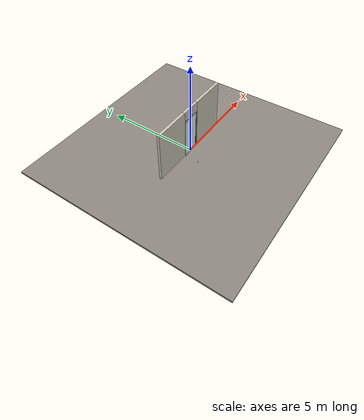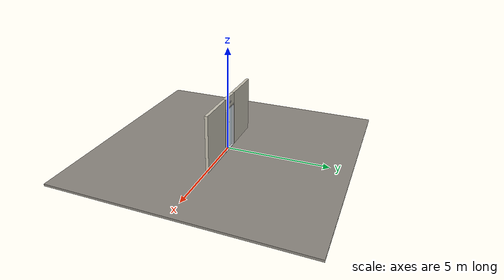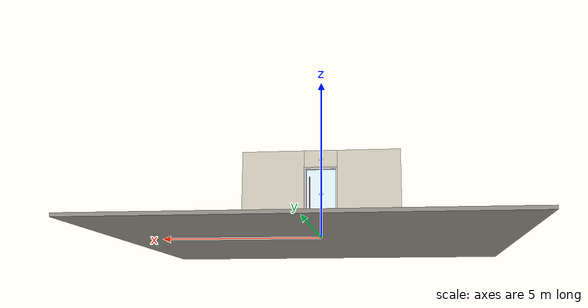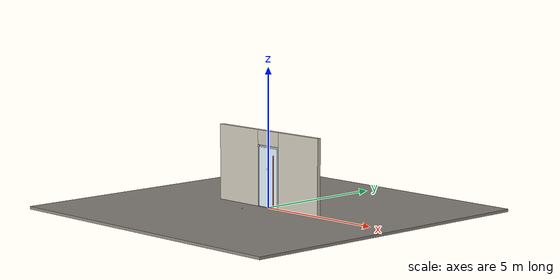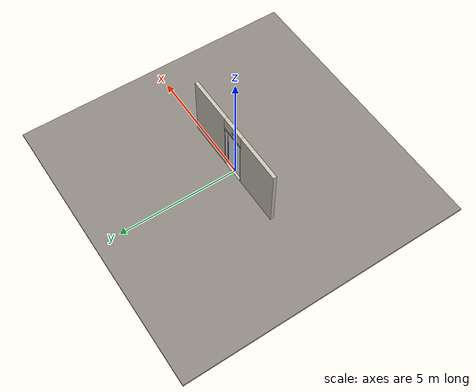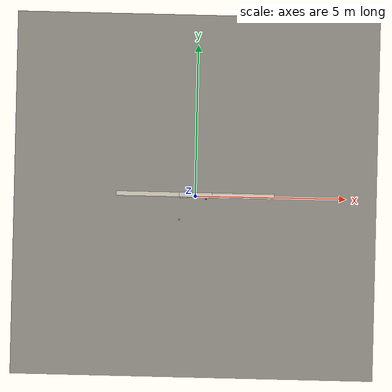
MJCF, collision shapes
<?xml version="1.0" ?>
<mujoco model="db0178_swing_single_full">
  <compiler angle="radian" meshdir="../../hardware" texturedir="../../textures" autolimits="true" inertiafromgeom="false"/>
  <option timestep="0.002" integrator="implicitfast" cone="elliptic" impratio="10" noslip_iterations="3">
    <flag multiccd="enable"/>
  </option>
  <size memory="16M"/>
  <default>
    <geom condim="4" solref="0.005 1" solimp="0.95 0.99 0.001"/>
    <joint solreflimit="0.005 1" solimplimit="0.95 0.99 0.001"/>
    <tendon solreflimit="0.005 1"/>
    <equality solref="0.002 1"/>
  </default>
  <visual>
    <headlight ambient="0.4 0.4 0.4" diffuse="0.7 0.7 0.7" specular="0.2 0.2 0.2"/>
    <quality shadowsize="4096"/>
    <map znear="0.01" zfar="60"/>
  </visual>
  <asset>
    <mesh name="exit_sign_a6449bfa2c" file="exit_sign_a6449bfa2c.obj"/>
    <mesh name="pull_897e207f65" file="pull_897e207f65.obj"/>
    <material name="mat_floor" rgba="0.55 0.53 0.5 1" specular="0.2" shininess="0.15" reflectance="0"/>
    <material name="mat_wall" rgba="0.78 0.76 0.7 1" specular="0.2" shininess="0.1" reflectance="0"/>
    <material name="mat_leaf" rgba="0.85 0.92 0.95 0.25" specular="0.2" shininess="0.95" reflectance="0.1"/>
    <material name="mat_glass_leaf" rgba="0.85 0.92 0.95 0.25" specular="0.2" shininess="0.95" reflectance="0.1"/>
    <material name="mat_patch" rgba="0.75 0.76 0.77 1" specular="0.8" shininess="0.65" reflectance="0.4"/>
    <material name="mat_hinge" rgba="0.65 0.66 0.68 1" specular="0.74" shininess="0.5" reflectance="0.36"/>
    <material name="mat_op_stainless" rgba="0.75 0.76 0.77 1" specular="0.8" shininess="0.65" reflectance="0.4"/>
    <material name="mat_frame" rgba="0.8 0.81 0.83 1" specular="0.8" shininess="0.6" reflectance="0.4"/>
    <material name="mat_threshold" rgba="0.8 0.81 0.83 1" specular="0.8" shininess="0.6" reflectance="0.4"/>
    <material name="mat_closer" rgba="0.75 0.76 0.77 1" specular="0.8" shininess="0.65" reflectance="0.4"/>
    <material name="mat_exit_sign" rgba="0.85 0.1 0.1 1" specular="0.2" shininess="0.6" reflectance="0"/>
    <material name="mat_sign_bracket" rgba="0.8 0.81 0.83 1" specular="0.8" shininess="0.6" reflectance="0.4"/>
    <material name="mat_sign" rgba="0.75 0.76 0.77 1" specular="0.8" shininess="0.65" reflectance="0.4"/>
    <material name="mat_stop" rgba="0.9 0.9 0.92 1" specular="0.8" shininess="0.9" reflectance="0.4"/>
    <texture name="skybox" type="skybox" builtin="gradient" rgb1="0.6 0.7 0.85" rgb2="0.9 0.92 0.95" width="256" height="256"/>
  </asset>
  <worldbody>
    <light name="sun" pos="1.5 -2.5 4" dir="-0.3 0.5 -0.8" directional="true" diffuse="0.8 0.8 0.8" specular="0.3 0.3 0.3" castshadow="true"/>
    <light name="fill" pos="-1.5 2.5 3" dir="0.3 -0.5 -0.7" directional="true" diffuse="0.35 0.35 0.4" castshadow="false"/>
    <camera name="robot_view" pos="0 -2.594812 1.812087" xyaxes="1 0 0 0 0.26963 0.962964" fovy="52"/>
    <camera name="far_view" pos="0 2.680813 1.812087" xyaxes="-1 0 0 0 -0.26963 0.962964" fovy="52"/>
    <camera name="iso" pos="2.004737 -2.172762 2.234138" xyaxes="0.741536 0.670913 0 -0.242917 0.268487 0.932151" fovy="46"/>
    <camera name="detail_handle" pos="0.53 -0.8875 1.296" xyaxes="0.97561 0.219512 0 -0.070934 0.315262 0.94635" fovy="38"/>
    <geom name="floor" type="box" size="6 6 0.05" pos="0 0 -0.05" material="mat_floor" group="0" contype="1" conaffinity="1" friction="0.8 0.005 0.0001" density="2400"/>
    <geom name="wall_left" type="box" size="0.9965 0.0725 1.3735" pos="-1.5035 0.043 1.3735" material="mat_wall" group="0" contype="1" conaffinity="1" friction="0.6 0.005 0.0001" density="800"/>
    <geom name="wall_right" type="box" size="0.9815 0.0725 1.3735" pos="1.5185 0.043 1.3735" material="mat_wall" group="0" contype="1" conaffinity="1" friction="0.6 0.005 0.0001" density="800"/>
    <geom name="wall_header" type="box" size="0.522 0.0725 0.2625" pos="0.015 0.043 2.4845" material="mat_wall" group="0" contype="1" conaffinity="1" friction="0.6 0.005 0.0001" density="800"/>
    <geom name="pivot_bottom_socket" type="box" size="0.035 0.035 0.0125" pos="-0.443 -0.0325 0.0025" material="mat_hinge" group="1" contype="0" conaffinity="0" density="7850"/>
    <geom name="pivot_top_bracket" type="box" size="0.035 0.035 0.0355" pos="-0.443 -0.0325 2.1865" material="mat_hinge" group="1" contype="0" conaffinity="0" density="7850"/>
    <geom name="jamb_hinge" type="box" size="0.0225 0.0725 1.0735" pos="-0.4845 0.043 1.0735" material="mat_frame" group="0" contype="1" conaffinity="1" friction="0.6 0.005 0.0001" density="300"/>
    <geom name="jamb_strike" type="box" size="0.0225 0.0725 1.0735" pos="0.4845 0.043 1.0735" material="mat_frame" group="0" contype="1" conaffinity="1" friction="0.6 0.005 0.0001" density="300"/>
    <geom name="stud_strike" type="box" size="0.015 0.0725 1.0735" pos="0.522 0.043 1.0735" material="mat_wall" group="0" contype="1" conaffinity="1" friction="0.6 0.005 0.0001" density="500"/>
    <geom name="jamb_head" type="box" size="0.522 0.0725 0.0225" pos="0.015 0.043 2.1695" material="mat_frame" group="0" contype="1" conaffinity="1" friction="0.6 0.005 0.0001" density="300"/>
    <geom name="head_stud" type="box" size="0.522 0.0725 0.015" pos="0.015 0.043 2.207" material="mat_wall" group="0" contype="1" conaffinity="1" friction="0.6 0.005 0.0001" density="500"/>
    <geom name="threshold" type="box" size="0.507 0.0725 0.0065" pos="0 0.043 0.0065" material="mat_threshold" group="0" contype="1" conaffinity="1" friction="0.5 0.005 0.0001" density="2700"/>
    <geom name="floor_spring_cover" type="box" size="0.17 0.06 0.002" pos="-0.342 0 0.002" material="mat_closer" group="1" contype="0" conaffinity="0" density="7900"/>
    <geom name="exit_sign" type="mesh" mesh="exit_sign_a6449bfa2c" pos="0 0.15 2.447" material="mat_exit_sign" group="2" contype="0" conaffinity="0" density="500"/>
    <geom name="exit_sign_bracket" type="box" size="0.05775 0.00525 0.035" pos="0 0.12025 2.447" material="mat_sign_bracket" group="2" contype="0" conaffinity="0" density="7850"/>
    <geom name="floor_stop_dome" type="sphere" size="0.025" pos="-0.526252 -0.789023 0" material="mat_stop" group="0" contype="1" conaffinity="1" friction="0.6 0.005 0.0001" density="7000"/>
    <site name="approach_point" pos="0 -1.5 0" quat="1 0 0 0" size="0.05" rgba="0.2 0.9 0.2 0.5" group="4"/>
    <site name="goal_point" pos="0 1.5 0" quat="1 0 0 0" size="0.05" rgba="0.2 0.9 0.2 0.5" group="4"/>
    <site name="door_plane_center" pos="0 0 1.0735" quat="1 0 0 0" size="0.02" rgba="0.2 0.9 0.2 0.5" group="4"/>
    <body name="leaf" pos="-0.462 0 0">
      <inertial pos="0.53131 -0.000026 1.067654" mass="102.078242" quat="-0.496721 0.496629 0.503349 0.503258" diaginertia="7.871212544 36.412243573 43.952525819"/>
      <joint name="leaf_hinge" type="hinge" axis="0 0 -1" pos="0.019 -0.0325 0" limited="true" range="0 1.658063" solreflimit="0.02 1" damping="8.268966" frictionloss="1.394385" stiffness="36.070876" springref="-1.586876" armature="0.02"/>
      <geom name="leaf_glass" type="box" size="0.457 0.0225 1.063" pos="0.46 0 1.08" material="mat_glass_leaf" group="0" contype="1" conaffinity="1" friction="0.4 0.005 0.0001" density="1"/>
      <geom name="pivot_bottom" type="cylinder" size="0.014 0.004" pos="0.019 -0.0325 0.012" material="mat_hinge" group="1" contype="0" conaffinity="0" density="7850"/>
      <geom name="pivot_top" type="cylinder" size="0.014 0.004" pos="0.019 -0.0325 2.147" material="mat_hinge" group="1" contype="0" conaffinity="0" density="7850"/>
      <geom name="leaf_pull_n" type="mesh" mesh="pull_897e207f65" pos="0.812 -0.0225 1.016" quat="0.707107 0.707107 0 0" material="mat_op_stainless" group="1" contype="0" conaffinity="0" density="3000"/>
      <geom name="leaf_pull_col_n" type="capsule" size="0.016 0.88" pos="0.812 -0.0875 1.016" material="mat_op_stainless" group="3" contype="1" conaffinity="1" rgba="0.8 0.3 0.3 0.25" friction="0.7 0.01 0.0001" density="3000"/>
      <geom name="leaf_pull_p" type="mesh" mesh="pull_897e207f65" pos="0.812 0.0225 1.016" quat="-0.707107 0.707107 0 0" material="mat_op_stainless" group="1" contype="0" conaffinity="0" density="3000"/>
      <geom name="leaf_pull_col_p" type="capsule" size="0.016 0.88" pos="0.812 0.0875 1.016" material="mat_op_stainless" group="3" contype="1" conaffinity="1" rgba="0.8 0.3 0.3 0.25" friction="0.7 0.01 0.0001" density="3000"/>
      <geom name="sign_push" type="box" size="0.06 0.001 0.03" pos="0.46 0.0235 1.367" material="mat_sign" group="2" contype="0" conaffinity="0" density="7900"/>
      <geom name="sign_pull" type="box" size="0.06 0.001 0.03" pos="0.46 -0.0235 1.367" material="mat_sign" group="2" contype="0" conaffinity="0" density="7900"/>
      <site name="leaf_pull_grip_n" pos="0.812 -0.0875 1.016" quat="1 0 0 0" size="0.012" rgba="0.2 0.9 0.2 0.5" group="4"/>
      <site name="leaf_pull_grip_p" pos="0.812 0.0875 1.016" quat="1 0 0 0" size="0.012" rgba="0.2 0.9 0.2 0.5" group="4"/>
      <site name="leaf_edge_mid" pos="0.917 0 1.063" quat="1 0 0 0" size="0.02" rgba="0.2 0.9 0.2 0.5" group="4"/>
    </body>
  </worldbody>
  <sensor>
    <jointpos name="leaf_hinge_pos" joint="leaf_hinge"/>
    <jointvel name="leaf_hinge_vel" joint="leaf_hinge"/>
  </sensor>
</mujoco>
